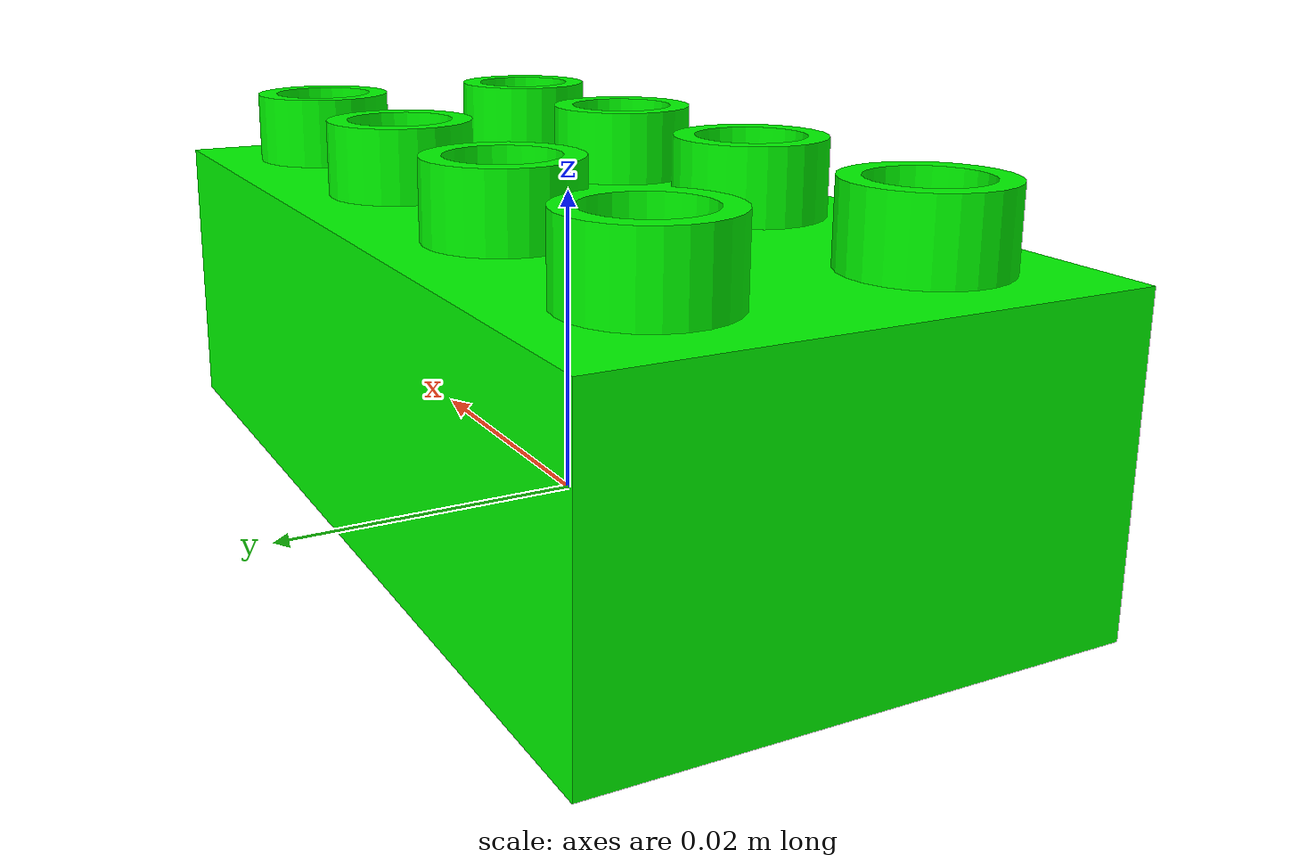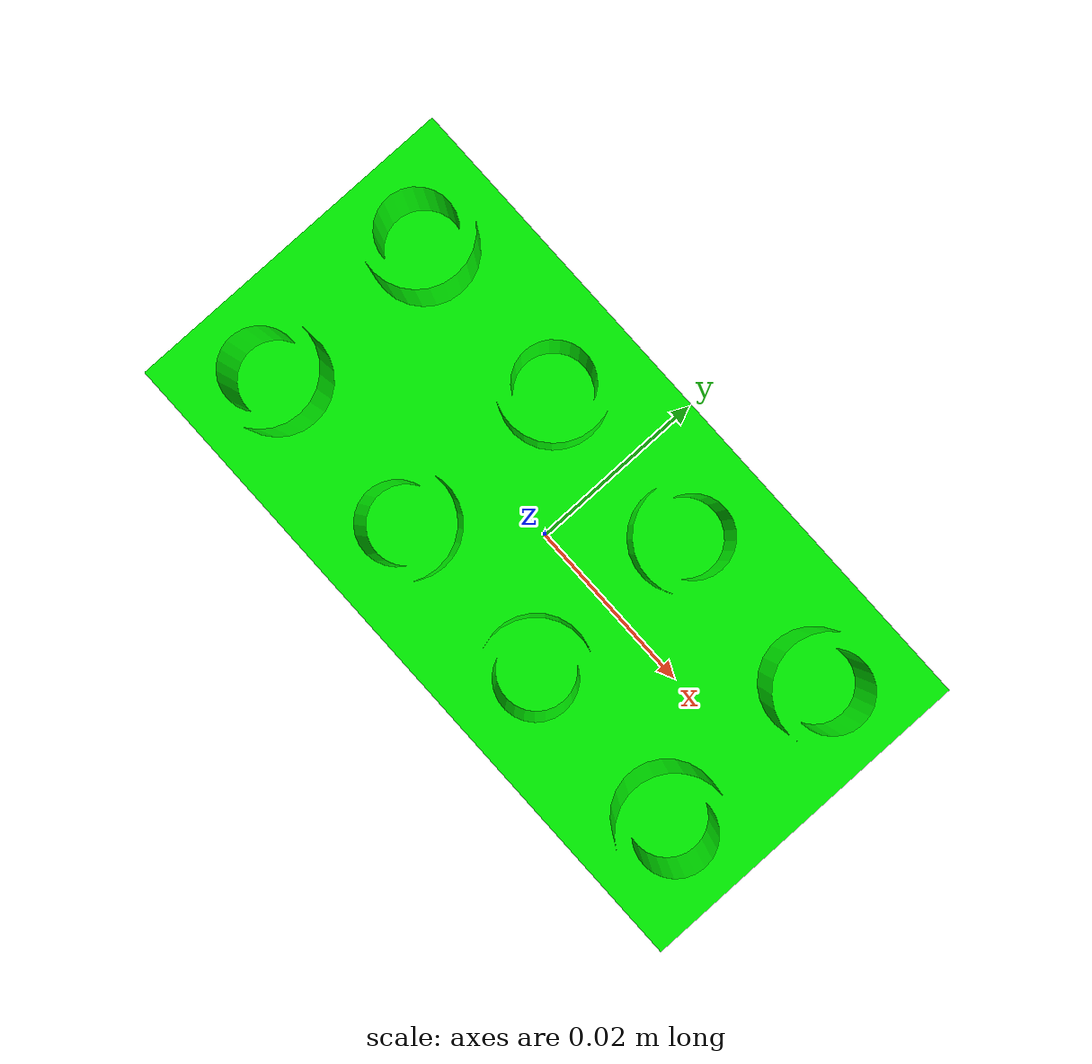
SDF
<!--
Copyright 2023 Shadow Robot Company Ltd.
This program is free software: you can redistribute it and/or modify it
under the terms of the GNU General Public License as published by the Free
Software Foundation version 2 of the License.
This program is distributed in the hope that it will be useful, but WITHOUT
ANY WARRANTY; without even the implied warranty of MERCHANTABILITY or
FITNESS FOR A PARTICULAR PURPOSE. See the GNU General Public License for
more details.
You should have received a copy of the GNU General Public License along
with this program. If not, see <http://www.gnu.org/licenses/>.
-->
<?xml version="1.0" ?>

<sdf version="1.4">
  <model name="duplo_2x4x1">
    <link name="link">
      <inertial>
        <mass>0.2</mass>
      </inertial>
      <collision name="collision">
        <pose>0.0 0.0 0.0 0 0.0 0.0</pose>
        <geometry>
          <mesh>
            <uri>model://duplo_2x4x1/meshes/duplo_2x4x1.stl</uri>
          </mesh>
        </geometry>
      </collision>
      <visual name="visual">
        <pose>0.0 0.0 0.0 0 0.0 0.0</pose>
        <geometry>
          <mesh>
            <uri>model://duplo_2x4x1/meshes/duplo_2x4x1.stl</uri>
          </mesh>
        </geometry>
        <material>
          <ambient>0 1 0 1</ambient>
          <diffuse>0 1 0 1</diffuse>
          <specular>0.1 0.1 0.1 1</specular>
        </material>
      </visual>
    </link>
  </model>
</sdf>
